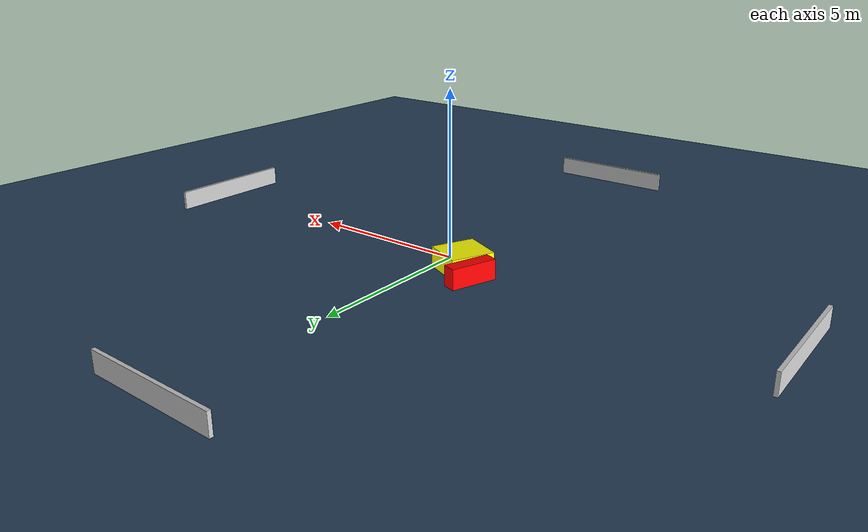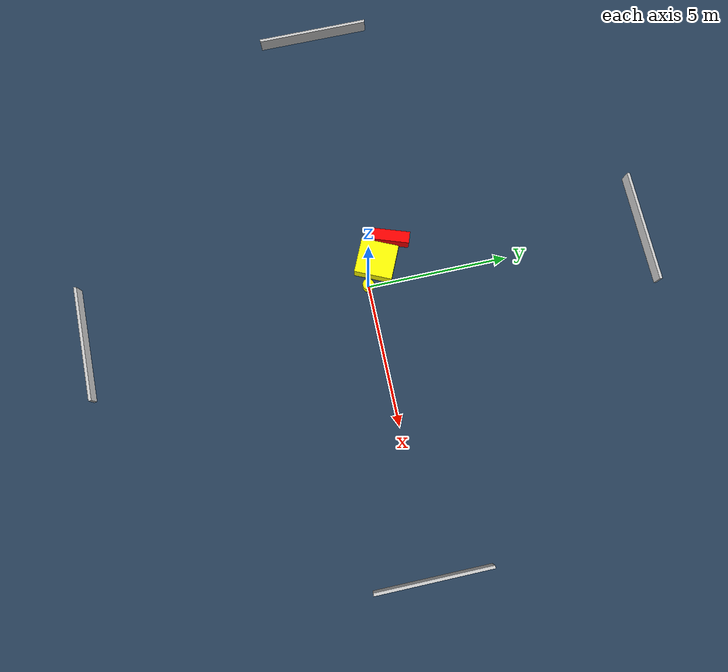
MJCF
<?xml version="1.0" ?>
<mujoco model="generated_environment">
  <option timestep="0.01" integrator="RK4" cone="elliptic"/>
  <default>
    <geom density="1"/>
  </default>
  <asset>
    <texture builtin="gradient" height="3072" name="skybox" rgb1="0.3 0.5 0.7" rgb2="0 0 0" type="skybox" width="512"/>
    <texture builtin="checker" height="300" name="groundplane" rgb1="0.2 0.3 0.4" rgb2="0.1 0.2 0.3" type="2d" width="300"/>
    <material name="groundplane" reflectance="0.2" texrepeat="5 5" texture="groundplane"/>
  </asset>
  <worldbody>
    <light dir="0 0 -1" directional="true" pos="0 0 1.5"/>
    <geom condim="3" friction="0.5 0.005 0.001" material="groundplane" name="floor" pos="0 0 0" size="0 0 0.05" type="plane"/>
    <body name="walls">
      <geom name="wall_1" condim="4" pos="-10.0 0.0 0.3" rgba="0.800000011920929 0.800000011920929 0.800000011920929 1.0" size="0.05 2.0 0.3" type="box"/>
      <geom name="wall_2" condim="4" pos="10.0 0.0 0.3" rgba="0.800000011920929 0.800000011920929 0.800000011920929 1.0" size="0.05 2.0 0.3" type="box"/>
      <geom name="wall_3" condim="4" pos="0.0 -10.0 0.3" rgba="0.800000011920929 0.800000011920929 0.800000011920929 1.0" size="2.0 0.05 0.3" type="box"/>
      <geom name="wall_4" condim="4" pos="0.0 10.0 0.3" rgba="0.800000011920929 0.800000011920929 0.800000011920929 1.0" size="2.0 0.05 0.3" type="box"/>
    </body>
    <body name="robot">
      <joint name="joint_x" type="slide" pos="0 0 0" axis="1 0 0"/>
      <joint name="joint_y" type="slide" pos="0 0 0" axis="0 1 0"/>
      <geom name="robot" type="cylinder" pos="0.0 0.0 0.2" size="0.2 0.2 0.0" mass="5.0" friction="1.0 0.005 0.0001" condim="4" rgba="1.0 1.0 0.0 1.0"/>
    </body>
    <body name="obstacle_1_movable">
      <geom name="obstacle_1_movable" condim="4" pos="-0.8005787414506567 0.4646276887701771 0.3" euler="0 0 65.49748121629851" friction="0.0 0.005 0.001" rgba="1.0 1.0 0.0 1.0" size="0.6664046039270886 0.619018262617542 0.3" type="box" mass="0.1"/>
      <joint type="free"/>
    </body>
    <body name="obstacle_2_static">
      <geom name="obstacle_2_static" condim="4" pos="-1.5321444629325365 1.1037552575303173 0.3" euler="0 0 341.083209128445" friction="0.0 0.005 0.001" rgba="1.0 0.0 0.0 1.0" size="0.20285599076349645 0.700629797328228 0.3" type="box"/>
    </body>
  </worldbody>
  <actuator>
    <motor name="actuator_x" joint="joint_x" gear="1" ctrlrange="-1 1"/>
    <motor name="actuator_y" joint="joint_y" gear="1" ctrlrange="-1 1"/>
  </actuator>
</mujoco>
